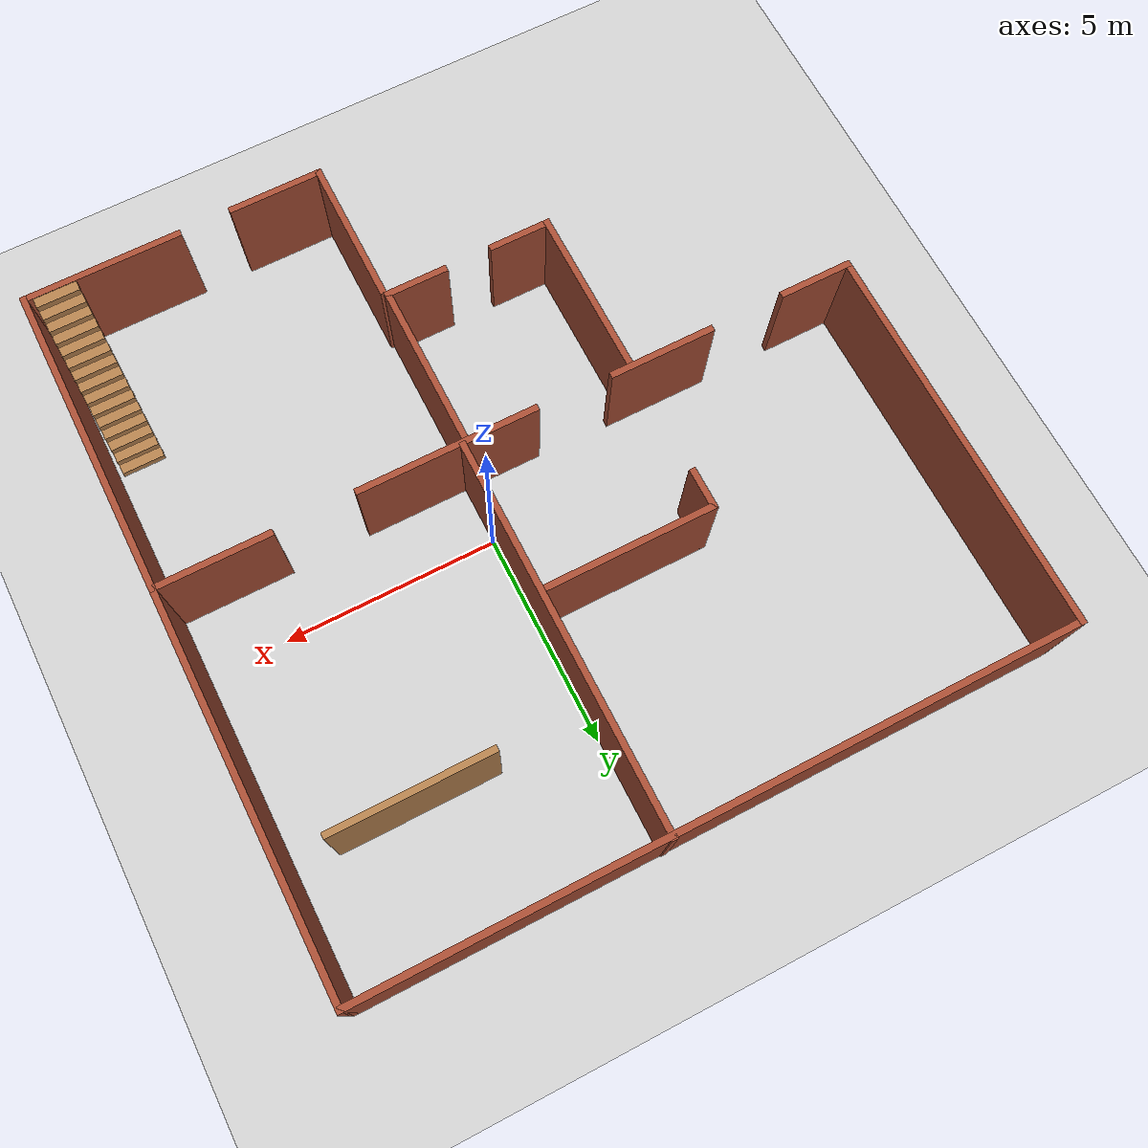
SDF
<sdf version="1.7">
 <world name="default">
  <light name="sun" type="directional">
   <pose>0 0 10 0 -0 0</pose>
   <diffuse>0.8 0.8 0.8 1</diffuse>
   <specular>0.2 0.2 0.2 1</specular>
   <attenuation>
    <range>1000</range>
    <constant>0.9</constant>
    <linear>0.01</linear>
    <quadratic>0.001</quadratic>
   </attenuation>
   <direction>-0.5 0.1 -0.9</direction>
   <spot><inner_angle>0</inner_angle><outer_angle>0</outer_angle><falloff>0</falloff></spot>
  </light>
  <model name="ground_plane">
   <static>1</static>
   <link name="link">
    <collision name="collision">
     <geometry><plane><normal>0 0 1</normal><size>100 100</size></plane></geometry>
     <surface>
      <contact><collide_bitmask>65535</collide_bitmask></contact>
      <friction><ode><mu>100</mu><mu2>50</mu2></ode></friction>
     </surface>
    </collision>
    <visual name="visual">
     <cast_shadows>0</cast_shadows>
     <geometry><plane><normal>0 0 1</normal><size>100 100</size></plane></geometry>
     <material>
      <script><uri>file://media/materials/scripts/gazebo.material</uri><name>Gazebo/Grey</name></script>
     </material>
    </visual>
   </link>
  </model>
  <gravity>0 0 -9.8</gravity>
  <magnetic_field>6e-06 2.3e-05 -4.2e-05</magnetic_field>
  <atmosphere type="adiabatic"/>
  <physics type="ode">
   <max_step_size>0.001</max_step_size>
   <real_time_factor>1</real_time_factor>
   <real_time_update_rate>1000</real_time_update_rate>
  </physics>
  <scene><ambient>0.4 0.4 0.4 1</ambient><background>0.7 0.7 0.7 1</background><shadows>1</shadows></scene>
  <spherical_coordinates>
   <surface_model>EARTH_WGS84</surface_model>
   <latitude_deg>0</latitude_deg>
   <longitude_deg>0</longitude_deg>
   <elevation>0</elevation>
   <heading_deg>0</heading_deg>
  </spherical_coordinates>
  <model name="map2">
   <pose>-1.27687 -0.578096 0 0 -0 0</pose>
   <link name="Stairs_1">
    <visual name="Stairs_1_Visual_0">
     <pose>7.49064 -4.75682 0.083333 0 -0 0</pose>
     <geometry><box><size>1 0.233333 0.166667</size></box></geometry>
     <material>
      <script><uri>file://media/materials/scripts/gazebo.material</uri><name>Gazebo/Wood</name></script>
      <ambient>1 1 1 1</ambient>
     </material>
     <meta><layer>0</layer></meta>
    </visual>
    <collision name="Stairs_1_Collision_0">
     <geometry><box><size>1 0.233333 0.166667</size></box></geometry>
     <pose>7.49064 -4.75682 0.083333 0 -0 0</pose>
    </collision>
    <visual name="Stairs_1_Visual_1">
     <pose>7.49064 -4.99015 0.25 0 -0 0</pose>
     <geometry><box><size>1 0.233333 0.166667</size></box></geometry>
     <material>
      <script><uri>file://media/materials/scripts/gazebo.material</uri><name>Gazebo/Wood</name></script>
      <ambient>1 1 1 1</ambient>
     </material>
     <meta><layer>0</layer></meta>
    </visual>
    <collision name="Stairs_1_Collision_1">
     <geometry><box><size>1 0.233333 0.166667</size></box></geometry>
     <pose>7.49064 -4.99015 0.25 0 -0 0</pose>
    </collision>
    <visual name="Stairs_1_Visual_2">
     <pose>7.49064 -5.22349 0.416667 0 -0 0</pose>
     <geometry><box><size>1 0.233333 0.166667</size></box></geometry>
     <material>
      <script><uri>file://media/materials/scripts/gazebo.material</uri><name>Gazebo/Wood</name></script>
      <ambient>1 1 1 1</ambient>
     </material>
     <meta><layer>0</layer></meta>
    </visual>
    <collision name="Stairs_1_Collision_2">
     <geometry><box><size>1 0.233333 0.166667</size></box></geometry>
     <pose>7.49064 -5.22349 0.416667 0 -0 0</pose>
    </collision>
    <visual name="Stairs_1_Visual_3">
     <pose>7.49064 -5.45682 0.583333 0 -0 0</pose>
     <geometry><box><size>1 0.233333 0.166667</size></box></geometry>
     <material>
      <script><uri>file://media/materials/scripts/gazebo.material</uri><name>Gazebo/Wood</name></script>
      <ambient>1 1 1 1</ambient>
     </material>
     <meta><layer>0</layer></meta>
    </visual>
    <collision name="Stairs_1_Collision_3">
     <geometry><box><size>1 0.233333 0.166667</size></box></geometry>
     <pose>7.49064 -5.45682 0.583333 0 -0 0</pose>
    </collision>
    <visual name="Stairs_1_Visual_4">
     <pose>7.49064 -5.69015 0.75 0 -0 0</pose>
     <geometry><box><size>1 0.233333 0.166667</size></box></geometry>
     <material>
      <script><uri>file://media/materials/scripts/gazebo.material</uri><name>Gazebo/Wood</name></script>
      <ambient>1 1 1 1</ambient>
     </material>
     <meta><layer>0</layer></meta>
    </visual>
    <collision name="Stairs_1_Collision_4">
     <geometry><box><size>1 0.233333 0.166667</size></box></geometry>
     <pose>7.49064 -5.69015 0.75 0 -0 0</pose>
    </collision>
    <visual name="Stairs_1_Visual_5">
     <pose>7.49064 -5.92349 0.916667 0 -0 0</pose>
     <geometry><box><size>1 0.233333 0.166667</size></box></geometry>
     <material>
      <script><uri>file://media/materials/scripts/gazebo.material</uri><name>Gazebo/Wood</name></script>
      <ambient>1 1 1 1</ambient>
     </material>
     <meta><layer>0</layer></meta>
    </visual>
    <collision name="Stairs_1_Collision_5">
     <geometry><box><size>1 0.233333 0.166667</size></box></geometry>
     <pose>7.49064 -5.92349 0.916667 0 -0 0</pose>
    </collision>
    <visual name="Stairs_1_Visual_6">
     <pose>7.49064 -6.15682 1.08333 0 -0 0</pose>
     <geometry><box><size>1 0.233333 0.166667</size></box></geometry>
     <material>
      <script><uri>file://media/materials/scripts/gazebo.material</uri><name>Gazebo/Wood</name></script>
      <ambient>1 1 1 1</ambient>
     </material>
     <meta><layer>0</layer></meta>
    </visual>
    <collision name="Stairs_1_Collision_6">
     <geometry><box><size>1 0.233333 0.166667</size></box></geometry>
     <pose>7.49064 -6.15682 1.08333 0 -0 0</pose>
    </collision>
    <visual name="Stairs_1_Visual_7">
     <pose>7.49064 -6.39015 1.25 0 -0 0</pose>
     <geometry><box><size>1 0.233333 0.166667</size></box></geometry>
     <material>
      <script><uri>file://media/materials/scripts/gazebo.material</uri><name>Gazebo/Wood</name></script>
      <ambient>1 1 1 1</ambient>
     </material>
     <meta><layer>0</layer></meta>
    </visual>
    <collision name="Stairs_1_Collision_7">
     <geometry><box><size>1 0.233333 0.166667</size></box></geometry>
     <pose>7.49064 -6.39015 1.25 0 -0 0</pose>
    </collision>
    <visual name="Stairs_1_Visual_8">
     <pose>7.49064 -6.62349 1.41667 0 -0 0</pose>
     <geometry><box><size>1 0.233333 0.166667</size></box></geometry>
     <material>
      <script><uri>file://media/materials/scripts/gazebo.material</uri><name>Gazebo/Wood</name></script>
      <ambient>1 1 1 1</ambient>
     </material>
     <meta><layer>0</layer></meta>
    </visual>
    <collision name="Stairs_1_Collision_8">
     <geometry><box><size>1 0.233333 0.166667</size></box></geometry>
     <pose>7.49064 -6.62349 1.41667 0 -0 0</pose>
    </collision>
    <visual name="Stairs_1_Visual_9">
     <pose>7.49064 -6.85682 1.58333 0 -0 0</pose>
     <geometry><box><size>1 0.233333 0.166667</size></box></geometry>
     <material>
      <script><uri>file://media/materials/scripts/gazebo.material</uri><name>Gazebo/Wood</name></script>
      <ambient>1 1 1 1</ambient>
     </material>
     <meta><layer>0</layer></meta>
    </visual>
    <collision name="Stairs_1_Collision_9">
     <geometry><box><size>1 0.233333 0.166667</size></box></geometry>
     <pose>7.49064 -6.85682 1.58333 0 -0 0</pose>
    </collision>
    <visual name="Stairs_1_Visual_10">
     <pose>7.49064 -7.09015 1.75 0 -0 0</pose>
     <geometry><box><size>1 0.233333 0.166667</size></box></geometry>
     <material>
      <script><uri>file://media/materials/scripts/gazebo.material</uri><name>Gazebo/Wood</name></script>
      <ambient>1 1 1 1</ambient>
     </material>
     <meta><layer>0</layer></meta>
    </visual>
    <collision name="Stairs_1_Collision_10">
     <geometry><box><size>1 0.233333 0.166667</size></box></geometry>
     <pose>7.49064 -7.09015 1.75 0 -0 0</pose>
    </collision>
    <visual name="Stairs_1_Visual_11">
     <pose>7.49064 -7.32349 1.91667 0 -0 0</pose>
     <geometry><box><size>1 0.233333 0.166667</size></box></geometry>
     <material>
      <script><uri>file://media/materials/scripts/gazebo.material</uri><name>Gazebo/Wood</name></script>
      <ambient>1 1 1 1</ambient>
     </material>
     <meta><layer>0</layer></meta>
    </visual>
    <collision name="Stairs_1_Collision_11">
     <geometry><box><size>1 0.233333 0.166667</size></box></geometry>
     <pose>7.49064 -7.32349 1.91667 0 -0 0</pose>
    </collision>
    <visual name="Stairs_1_Visual_12">
     <pose>7.49064 -7.55682 2.08333 0 -0 0</pose>
     <geometry><box><size>1 0.233333 0.166667</size></box></geometry>
     <material>
      <script><uri>file://media/materials/scripts/gazebo.material</uri><name>Gazebo/Wood</name></script>
      <ambient>1 1 1 1</ambient>
     </material>
     <meta><layer>0</layer></meta>
    </visual>
    <collision name="Stairs_1_Collision_12">
     <geometry><box><size>1 0.233333 0.166667</size></box></geometry>
     <pose>7.49064 -7.55682 2.08333 0 -0 0</pose>
    </collision>
    <visual name="Stairs_1_Visual_13">
     <pose>7.49064 -7.79015 2.25 0 -0 0</pose>
     <geometry><box><size>1 0.233333 0.166667</size></box></geometry>
     <material>
      <script><uri>file://media/materials/scripts/gazebo.material</uri><name>Gazebo/Wood</name></script>
      <ambient>1 1 1 1</ambient>
     </material>
     <meta><layer>0</layer></meta>
    </visual>
    <collision name="Stairs_1_Collision_13">
     <geometry><box><size>1 0.233333 0.166667</size></box></geometry>
     <pose>7.49064 -7.79015 2.25 0 -0 0</pose>
    </collision>
    <visual name="Stairs_1_Visual_14">
     <pose>7.49064 -8.02349 2.41667 0 -0 0</pose>
     <geometry><box><size>1 0.233333 0.166667</size></box></geometry>
     <material>
      <script><uri>file://media/materials/scripts/gazebo.material</uri><name>Gazebo/Wood</name></script>
      <ambient>1 1 1 1</ambient>
     </material>
     <meta><layer>0</layer></meta>
    </visual>
    <collision name="Stairs_1_Collision_14">
     <geometry><box><size>1 0.233333 0.166667</size></box></geometry>
     <pose>7.49064 -8.02349 2.41667 0 -0 0</pose>
    </collision>
   </link>
   <link name="Wall_0">
    <collision name="Wall_0_Collision">
     <geometry><box><size>16.5 0.15 2.5</size></box></geometry>
     <pose>0 0 1.25 0 -0 0</pose>
    </collision>
    <visual name="Wall_0_Visual">
     <pose>0 0 1.25 0 -0 0</pose>
     <geometry><box><size>16.5 0.15 2.5</size></box></geometry>
     <material>
      <script><uri>file://media/materials/scripts/gazebo.material</uri><name>Gazebo/Bricks</name></script>
      <ambient>1 1 1 1</ambient>
     </material>
     <meta><layer>0</layer></meta>
    </visual>
    <pose>0 8.22406 0 0 -0 0</pose>
   </link>
   <link name="Wall_1">
    <collision name="Wall_1_Collision">
     <geometry><box><size>9.25 0.15 2.5</size></box></geometry>
     <pose>0 0 1.25 0 -0 0</pose>
    </collision>
    <visual name="Wall_1_Visual">
     <pose>0 0 1.25 0 -0 0</pose>
     <geometry><box><size>9.25 0.15 2.5</size></box></geometry>
     <material>
      <script><uri>file://media/materials/scripts/gazebo.material</uri><name>Gazebo/Bricks</name></script>
      <ambient>1 1 1 1</ambient>
     </material>
     <meta><layer>0</layer></meta>
    </visual>
    <pose>8.175 3.67406 0 0 -0 -1.5708</pose>
   </link>
   <link name="Wall_10">
    <collision name="Wall_10_Collision">
     <geometry><box><size>1.75 0.15 2.5</size></box></geometry>
     <pose>0 0 1.25 0 -0 0</pose>
    </collision>
    <visual name="Wall_10_Visual">
     <pose>0 0 1.25 0 -0 0</pose>
     <geometry><box><size>1.75 0.15 2.5</size></box></geometry>
     <material>
      <script><uri>file://media/materials/scripts/gazebo.material</uri><name>Gazebo/Bricks</name></script>
      <ambient>1 1 1 1</ambient>
     </material>
     <meta><layer>0</layer></meta>
    </visual>
    <pose>-7.375 -0.875942 0 0 -0 0</pose>
   </link>
   <link name="Wall_12">
    <collision name="Wall_12_Collision">
     <geometry><box><size>2.5 0.15 2.5</size></box></geometry>
     <pose>0 0 1.25 0 -0 0</pose>
    </collision>
    <visual name="Wall_12_Visual">
     <pose>0 0 1.25 0 -0 0</pose>
     <geometry><box><size>2.5 0.15 2.5</size></box></geometry>
     <material>
      <script><uri>file://media/materials/scripts/gazebo.material</uri><name>Gazebo/Bricks</name></script>
      <ambient>1 1 1 1</ambient>
     </material>
     <meta><layer>0</layer></meta>
    </visual>
    <pose>-3.55003 -0.854822 0 0 -0 0</pose>
   </link>
   <link name="Wall_14">
    <collision name="Wall_14_Collision">
     <geometry><box><size>1 0.15 2.5</size></box></geometry>
     <pose>0 0 1.25 0 -0 0</pose>
    </collision>
    <visual name="Wall_14_Visual">
     <pose>0 0 1.25 0 -0 0</pose>
     <geometry><box><size>1 0.15 2.5</size></box></geometry>
     <material>
      <script><uri>file://media/materials/scripts/gazebo.material</uri><name>Gazebo/Bricks</name></script>
      <ambient>1 1 1 1</ambient>
     </material>
     <meta><layer>0</layer></meta>
    </visual>
    <pose>-2.80549 2.29384 0 0 -0 1.5708</pose>
   </link>
   <link name="Wall_15">
    <collision name="Wall_15_Collision">
     <geometry><box><size>4 0.15 2.5</size></box></geometry>
     <pose>0 0 1.25 0 -0 0</pose>
    </collision>
    <visual name="Wall_15_Visual">
     <pose>0 0 1.25 0 -0 0</pose>
     <geometry><box><size>4 0.15 2.5</size></box></geometry>
     <material>
      <script><uri>file://media/materials/scripts/gazebo.material</uri><name>Gazebo/Bricks</name></script>
      <ambient>1 1 1 1</ambient>
     </material>
     <meta><layer>0</layer></meta>
    </visual>
    <pose>-0.880491 2.71884 0 0 -0 0</pose>
   </link>
   <link name="Wall_17">
    <collision name="Wall_17_Collision">
     <geometry><box><size>4 0.15 2.5</size></box></geometry>
     <pose>0 0 1.25 0 -0 0</pose>
    </collision>
    <visual name="Wall_17_Visual">
     <pose>0 0 1.25 0 -0 0</pose>
     <geometry><box><size>4 0.15 2.5</size></box></geometry>
     <material>
      <script><uri>file://media/materials/scripts/gazebo.material</uri><name>Gazebo/Bricks</name></script>
      <ambient>1 1 1 1</ambient>
     </material>
     <meta><layer>0</layer></meta>
    </visual>
    <pose>-2.80549 -2.85764 0 0 -0 -1.5708</pose>
   </link>
   <link name="Wall_19">
    <collision name="Wall_19_Collision">
     <geometry><box><size>1.5 0.15 2.5</size></box></geometry>
     <pose>0 0 1.25 0 -0 0</pose>
    </collision>
    <visual name="Wall_19_Visual">
     <pose>0 0 1.25 0 -0 0</pose>
     <geometry><box><size>1.5 0.15 2.5</size></box></geometry>
     <material>
      <script><uri>file://media/materials/scripts/gazebo.material</uri><name>Gazebo/Bricks</name></script>
      <ambient>1 1 1 1</ambient>
     </material>
     <meta><layer>0</layer></meta>
    </visual>
    <pose>-2.13049 -4.78264 0 0 -0 0</pose>
   </link>
   <link name="Wall_2">
    <collision name="Wall_2_Collision">
     <geometry><box><size>2.75 0.15 2.5</size></box></geometry>
     <pose>0 0 1.25 0 -0 0</pose>
    </collision>
    <visual name="Wall_2_Visual">
     <pose>0 0 1.25 0 -0 0</pose>
     <geometry><box><size>2.75 0.15 2.5</size></box></geometry>
     <material>
      <script><uri>file://media/materials/scripts/gazebo.material</uri><name>Gazebo/Bricks</name></script>
      <ambient>1 1 1 1</ambient>
     </material>
     <meta><layer>0</layer></meta>
    </visual>
    <pose>6.875 -0.875942 0 0 -0 3.14159</pose>
   </link>
   <link name="Wall_21">
    <collision name="Wall_21_Collision">
     <geometry><box><size>1.5 0.15 2.5</size></box></geometry>
     <pose>0 0 1.25 0 -0 0</pose>
    </collision>
    <visual name="Wall_21_Visual">
     <pose>0 0 1.25 0 -0 0</pose>
     <geometry><box><size>1.5 0.15 2.5</size></box></geometry>
     <material>
      <script><uri>file://media/materials/scripts/gazebo.material</uri><name>Gazebo/Bricks</name></script>
      <ambient>1 1 1 1</ambient>
     </material>
     <meta><layer>0</layer></meta>
    </visual>
    <pose>0.411595 -4.77171 0 0 -0 0</pose>
   </link>
   <link name="Wall_27">
    <collision name="Wall_27_Collision">
     <geometry><box><size>4 0.15 2.5</size></box></geometry>
     <pose>0 0 1.25 0 -0 0</pose>
    </collision>
    <visual name="Wall_27_Visual">
     <pose>0 0 1.25 0 -0 0</pose>
     <geometry><box><size>4 0.15 2.5</size></box></geometry>
     <material>
      <script><uri>file://media/materials/scripts/gazebo.material</uri><name>Gazebo/Bricks</name></script>
      <ambient>1 1 1 1</ambient>
     </material>
     <meta><layer>0</layer></meta>
    </visual>
    <pose>1.08659 -2.84671 0 0 -0 1.5708</pose>
   </link>
   <link name="Wall_29">
    <collision name="Wall_29_Collision">
     <geometry><box><size>7.5 0.15 2.5</size></box></geometry>
     <pose>0 0 1.25 0 -0 0</pose>
    </collision>
    <visual name="Wall_29_Visual">
     <pose>0 0 1.25 0 -0 0</pose>
     <geometry><box><size>7.5 0.15 2.5</size></box></geometry>
     <material>
      <script><uri>file://media/materials/scripts/gazebo.material</uri><name>Gazebo/Bricks</name></script>
      <ambient>1 1 1 1</ambient>
     </material>
     <meta><layer>0</layer></meta>
    </visual>
    <pose>8.175 -4.55094 0 0 -0 -1.5708</pose>
   </link>
   <link name="Wall_30">
    <collision name="Wall_30_Collision">
     <geometry><box><size>3.75 0.15 2.5</size></box></geometry>
     <pose>0 0 1.25 0 -0 0</pose>
    </collision>
    <visual name="Wall_30_Visual">
     <pose>0 0 1.25 0 -0 0</pose>
     <geometry><box><size>3.75 0.15 2.5</size></box></geometry>
     <material>
      <script><uri>file://media/materials/scripts/gazebo.material</uri><name>Gazebo/Bricks</name></script>
      <ambient>1 1 1 1</ambient>
     </material>
     <meta><layer>0</layer></meta>
    </visual>
    <pose>6.375 -8.22594 0 0 -0 3.14159</pose>
   </link>
   <link name="Wall_32">
    <collision name="Wall_32_Collision">
     <geometry><box><size>2.25 0.15 2.5</size></box></geometry>
     <pose>0 0 1.25 0 -0 0</pose>
    </collision>
    <visual name="Wall_32_Visual">
     <pose>0 0 1.25 0 -0 0</pose>
     <geometry><box><size>2.25 0.15 2.5</size></box></geometry>
     <material>
      <script><uri>file://media/materials/scripts/gazebo.material</uri><name>Gazebo/Bricks</name></script>
      <ambient>1 1 1 1</ambient>
     </material>
     <meta><layer>0</layer></meta>
    </visual>
    <pose>2.20827 -8.25 0 0 -0 3.14159</pose>
   </link>
   <link name="Wall_35">
    <collision name="Wall_35_Collision">
     <geometry><box><size>3.5 0.15 2.5</size></box></geometry>
     <pose>0 0 1.25 0 -0 0</pose>
    </collision>
    <visual name="Wall_35_Visual">
     <pose>0 0 1.25 0 -0 0</pose>
     <geometry><box><size>3.5 0.15 2.5</size></box></geometry>
     <material>
      <script><uri>file://media/materials/scripts/gazebo.material</uri><name>Gazebo/Bricks</name></script>
      <ambient>1 1 1 1</ambient>
     </material>
     <meta><layer>0</layer></meta>
    </visual>
    <pose>1.15827 -6.575 0 0 -0 1.5708</pose>
   </link>
   <link name="Wall_37">
    <collision name="Wall_37_Collision">
     <geometry><box><size>3.75 0.15 2.5</size></box></geometry>
     <pose>0 0 1.25 0 -0 0</pose>
    </collision>
    <visual name="Wall_37_Visual">
     <pose>0 0 1.25 0 -0 0</pose>
     <geometry><box><size>3.75 0.15 2.5</size></box></geometry>
     <material>
      <script><uri>file://media/materials/scripts/gazebo.material</uri><name>Gazebo/Wood</name></script>
      <ambient>1 1 1 1</ambient>
     </material>
     <meta><layer>0</layer></meta>
    </visual>
    <pose>5.28232 5.20153 0 0 -0 3.14159</pose>
   </link>
   <link name="Wall_4">
    <collision name="Wall_4_Collision">
     <geometry><box><size>4.25 0.15 2.5</size></box></geometry>
     <pose>0 0 1.25 0 -0 0</pose>
    </collision>
    <visual name="Wall_4_Visual">
     <pose>0 0 1.25 0 -0 0</pose>
     <geometry><box><size>4.25 0.15 2.5</size></box></geometry>
     <material>
      <script><uri>file://media/materials/scripts/gazebo.material</uri><name>Gazebo/Bricks</name></script>
      <ambient>1 1 1 1</ambient>
     </material>
     <meta><layer>0</layer></meta>
    </visual>
    <pose>1.52566 -0.906701 0 0 -0 3.14159</pose>
   </link>
   <link name="Wall_7">
    <collision name="Wall_7_Collision">
     <geometry><box><size>9.25 0.15 2.5</size></box></geometry>
     <pose>0 0 1.25 0 -0 0</pose>
    </collision>
    <visual name="Wall_7_Visual">
     <pose>0 0 1.25 0 -0 0</pose>
     <geometry><box><size>9.25 0.15 2.5</size></box></geometry>
     <material>
      <script><uri>file://media/materials/scripts/gazebo.material</uri><name>Gazebo/Bricks</name></script>
      <ambient>1 1 1 1</ambient>
     </material>
     <meta><layer>0</layer></meta>
    </visual>
    <pose>1.18922 3.7 0 0 -0 -1.5708</pose>
   </link>
   <link name="Wall_9">
    <collision name="Wall_9_Collision">
     <geometry><box><size>9.25 0.15 2.5</size></box></geometry>
     <pose>0 0 1.25 0 -0 0</pose>
    </collision>
    <visual name="Wall_9_Visual">
     <pose>0 0 1.25 0 -0 0</pose>
     <geometry><box><size>9.25 0.15 2.5</size></box></geometry>
     <material>
      <script><uri>file://media/materials/scripts/gazebo.material</uri><name>Gazebo/Bricks</name></script>
      <ambient>1 1 1 1</ambient>
     </material>
     <meta><layer>0</layer></meta>
    </visual>
    <pose>-8.175 3.67406 0 0 -0 -1.5708</pose>
   </link>
   <static>1</static>
  </model>
 </world>
</sdf>
